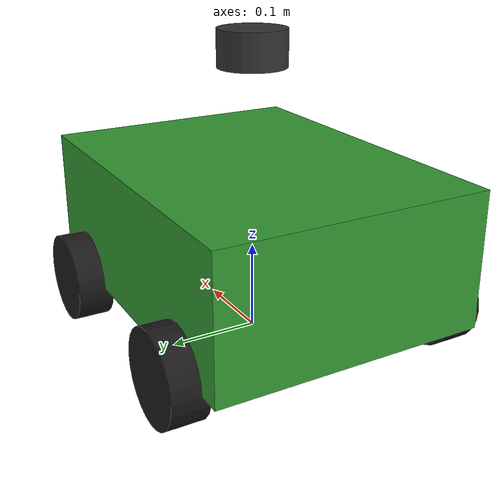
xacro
<?xml version="1.0"?>
<robot name="mower" xmlns:xacro="http://www.ros.org/wiki/xacro">

  <!-- ============ PARÂMETROS ============ -->
  <xacro:property name="chassis_length" value="0.40"/>
  <xacro:property name="chassis_width"  value="0.30"/>
  <xacro:property name="chassis_height" value="0.15"/>
  <xacro:property name="chassis_mass"   value="8.0"/>

  <xacro:property name="wheel_radius" value="0.05"/>
  <xacro:property name="wheel_width"  value="0.04"/>
  <xacro:property name="wheel_mass"   value="0.5"/>

  <!-- Distância entre rodas (eixos) -->
  <xacro:property name="wheel_separation_x" value="0.25"/>  <!-- frente-trás -->
  <xacro:property name="wheel_separation_y" value="0.32"/>  <!-- esquerda-direita -->

  <xacro:property name="lidar_radius" value="0.0375"/>  <!-- LD19 ~75mm diâm. -->
  <xacro:property name="lidar_height" value="0.04"/>
  <xacro:property name="lidar_mass"   value="0.1"/>

  <!-- ============ MACROS ============ -->

  <!-- Macro pra inércia de uma caixa -->
  <xacro:macro name="box_inertia" params="m x y z">
    <inertial>
      <mass value="${m}"/>
      <inertia ixx="${m*(y*y+z*z)/12}" ixy="0" ixz="0"
               iyy="${m*(x*x+z*z)/12}" iyz="0"
               izz="${m*(x*x+y*y)/12}"/>
    </inertial>
  </xacro:macro>

  <!-- Macro pra inércia de um cilindro (eixo Y, rodas) -->
  <xacro:macro name="cylinder_inertia_y" params="m r l">
    <inertial>
      <mass value="${m}"/>
      <inertia ixx="${m*(3*r*r+l*l)/12}" ixy="0" ixz="0"
               iyy="${m*r*r/2}"           iyz="0"
               izz="${m*(3*r*r+l*l)/12}"/>
    </inertial>
  </xacro:macro>

  <!-- Macro pra inércia de um cilindro (eixo Z, LiDAR) -->
  <xacro:macro name="cylinder_inertia_z" params="m r l">
    <inertial>
      <mass value="${m}"/>
      <inertia ixx="${m*(3*r*r+l*l)/12}" ixy="0" ixz="0"
               iyy="${m*(3*r*r+l*l)/12}" iyz="0"
               izz="${m*r*r/2}"/>
    </inertial>
  </xacro:macro>

  <!-- Macro pra criar uma roda -->
  <xacro:macro name="wheel" params="name x y">
    <link name="${name}_wheel">
      <visual>
        <origin xyz="0 0 0" rpy="1.5708 0 0"/>
        <geometry>
          <cylinder radius="${wheel_radius}" length="${wheel_width}"/>
        </geometry>
        <material name="black"><color rgba="0.1 0.1 0.1 1"/></material>
      </visual>
      <collision>
        <origin xyz="0 0 0" rpy="1.5708 0 0"/>
        <geometry>
          <cylinder radius="${wheel_radius}" length="${wheel_width}"/>
        </geometry>
      </collision>
      <xacro:cylinder_inertia_y m="${wheel_mass}" r="${wheel_radius}" l="${wheel_width}"/>
    </link>

    <joint name="${name}_wheel_joint" type="continuous">
      <parent link="base_link"/>
      <child link="${name}_wheel"/>
      <origin xyz="${x} ${y} 0" rpy="0 0 0"/>
      <axis xyz="0 1 0"/>
    </joint>

    <!-- Atrito alto pra rodas terem boa tração no Gazebo -->
    <gazebo reference="${name}_wheel">
      <mu1>1.0</mu1>
      <mu2>1.0</mu2>
      <kp>1000000.0</kp>
      <kd>100.0</kd>
    </gazebo>
  </xacro:macro>

  <!-- ============ CHASSI ============ -->

  <!-- base_footprint: ponto no chão, embaixo do robô. Padrão ROS. -->
  <link name="base_footprint"/>

  <joint name="base_footprint_joint" type="fixed">
    <parent link="base_footprint"/>
    <child link="base_link"/>
    <origin xyz="0 0 ${wheel_radius}" rpy="0 0 0"/>
  </joint>

  <link name="base_link">
    <visual>
      <origin xyz="0 0 ${chassis_height/2}" rpy="0 0 0"/>
      <geometry>
        <box size="${chassis_length} ${chassis_width} ${chassis_height}"/>
      </geometry>
      <material name="green"><color rgba="0.2 0.6 0.2 1"/></material>
    </visual>
    <collision>
      <origin xyz="0 0 ${chassis_height/2}" rpy="0 0 0"/>
      <geometry>
        <box size="${chassis_length} ${chassis_width} ${chassis_height}"/>
      </geometry>
    </collision>
    <xacro:box_inertia m="${chassis_mass}"
                       x="${chassis_length}"
                       y="${chassis_width}"
                       z="${chassis_height}"/>
  </link>

  <!-- ============ RODAS ============ -->
  <!-- Posições: x positivo = frente, y positivo = esquerda -->
  <xacro:wheel name="front_left"  x=" ${wheel_separation_x/2}" y=" ${wheel_separation_y/2}"/>
  <xacro:wheel name="front_right" x=" ${wheel_separation_x/2}" y="-${wheel_separation_y/2}"/>
  <xacro:wheel name="rear_left"   x="-${wheel_separation_x/2}" y=" ${wheel_separation_y/2}"/>
  <xacro:wheel name="rear_right"  x="-${wheel_separation_x/2}" y="-${wheel_separation_y/2}"/>

  <!-- ============ LIDAR ============ -->
  <link name="lidar_link">
    <visual>
      <origin xyz="0 0 ${lidar_height/2}" rpy="0 0 0"/>
      <geometry>
        <cylinder radius="${lidar_radius}" length="${lidar_height}"/>
      </geometry>
      <material name="dark_gray"><color rgba="0.2 0.2 0.2 1"/></material>
    </visual>
    <collision>
      <origin xyz="0 0 ${lidar_height/2}" rpy="0 0 0"/>
      <geometry>
        <cylinder radius="${lidar_radius}" length="${lidar_height}"/>
      </geometry>
    </collision>
    <xacro:cylinder_inertia_z m="${lidar_mass}" r="${lidar_radius}" l="${lidar_height}"/>
  </link>

  <joint name="lidar_joint" type="fixed">
    <parent link="base_link"/>
    <child link="lidar_link"/>
    <!-- LiDAR montado no centro do chassi, 5cm acima do topo -->
    <origin xyz="0 0 ${chassis_height + 0.10}" rpy="0 0 0"/>
  </joint>

  <!-- ============ PLUGINS GAZEBO ============ -->

  <!-- Plugin do LiDAR com specs do LD19 real -->
  <gazebo reference="lidar_link">
    <sensor name="ld19_lidar" type="gpu_lidar">
      <pose>0 0 ${lidar_height/2} 0 0 0</pose>
      <topic>scan</topic>
      <gz_frame_id>lidar_link</gz_frame_id>
      <update_rate>10</update_rate>     <!-- LD19 = 10Hz -->
      <lidar>
        <scan>
          <horizontal>
            <samples>450</samples>       <!-- 4500 pts/s ÷ 10Hz = 450 pts/scan -->
            <resolution>1</resolution>
            <min_angle>-3.14159</min_angle>
            <max_angle>3.14159</max_angle>
          </horizontal>
          <vertical>
            <samples>1</samples>
            <resolution>1</resolution>
            <min_angle>0</min_angle>
            <max_angle>0</max_angle>
          </vertical>
        </scan>
        <range>
          <min>0.02</min>                <!-- mínimo do LD19 -->
          <max>12.0</max>                <!-- máximo do LD19 -->
          <resolution>0.01</resolution>
        </range>
        <noise>
          <type>gaussian</type>
          <mean>0.0</mean>
          <stddev>0.01</stddev>          <!-- 1cm de ruído, realista -->
        </noise>
      </lidar>
      <always_on>1</always_on>
      <visualize>true</visualize>
    </sensor>
  </gazebo>

  <!-- Plugin de skid-steer: 4 rodas controladas como diferencial -->
  <gazebo>
    <plugin filename="gz-sim-diff-drive-system"
            name="gz::sim::systems::DiffDrive">
      <!-- Pares de rodas: o plugin trata os dois lados como "uma roda virtual" -->
      <left_joint>front_left_wheel_joint</left_joint>
      <left_joint>rear_left_wheel_joint</left_joint>
      <right_joint>front_right_wheel_joint</right_joint>
      <right_joint>rear_right_wheel_joint</right_joint>

      <wheel_separation>${wheel_separation_y}</wheel_separation>
      <wheel_radius>${wheel_radius}</wheel_radius>

      <!-- Limites de velocidade (m/s e rad/s) -->
      <max_linear_acceleration>1.0</max_linear_acceleration>
      <max_angular_acceleration>2.0</max_angular_acceleration>

      <!-- Tópicos ROS2 padrão -->
      <topic>cmd_vel</topic>
      <odom_topic>odom</odom_topic>
      <tf_topic>tf</tf_topic>
      <frame_id>odom</frame_id>
      <child_frame_id>base_footprint</child_frame_id>
      <odom_publish_frequency>30</odom_publish_frequency>
    </plugin>
  </gazebo>

  <!-- Plugin que publica os estados das juntas -->
  <gazebo>
    <plugin filename="gz-sim-joint-state-publisher-system"
            name="gz::sim::systems::JointStatePublisher">
      <topic>joint_states</topic>
    </plugin>
  </gazebo>

</robot>
